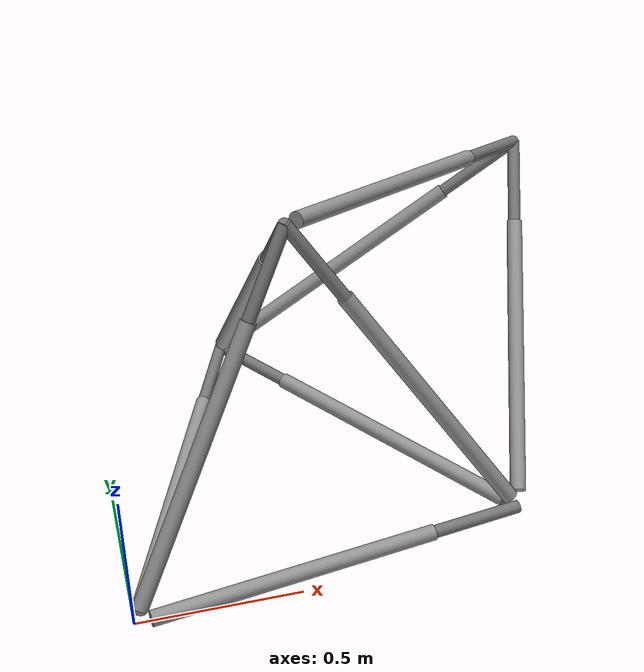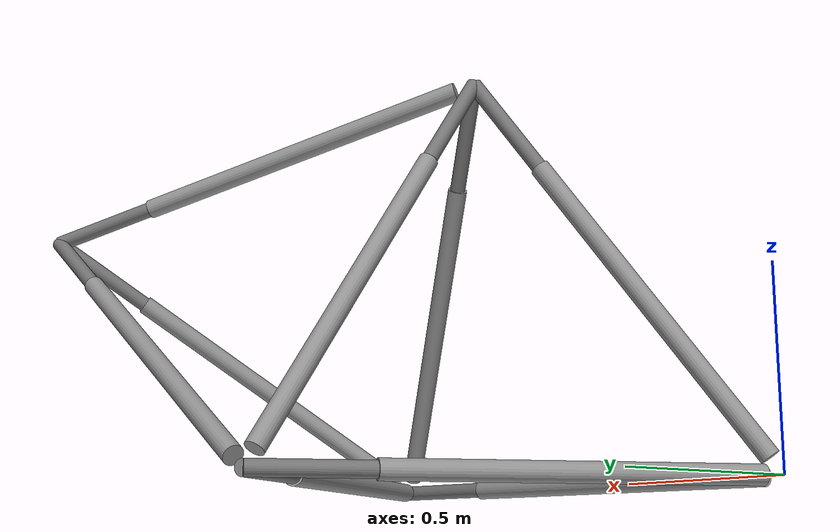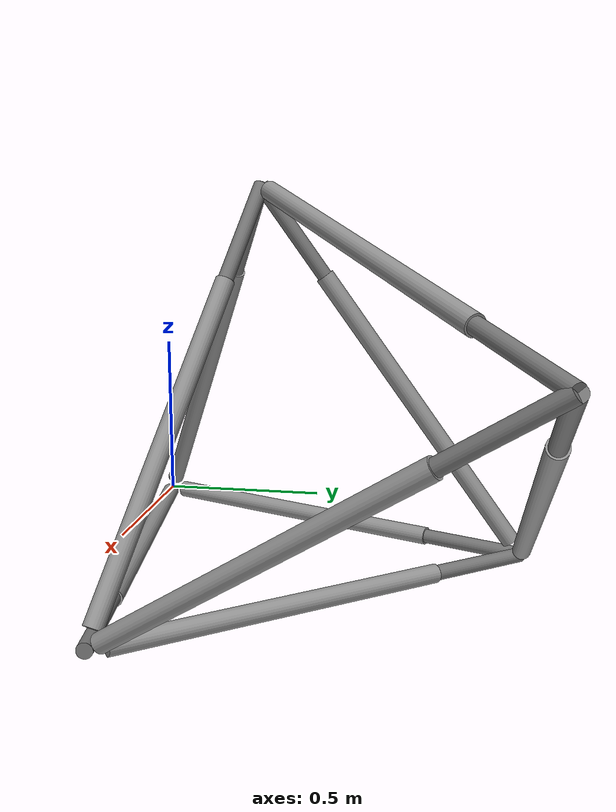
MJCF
<mujoco model="2-tet">
  <compiler angle="radian" meshdir="assets" autolimits="true"/>
  <option gravity="0 0 -9.81" timestep="0.002" integrator="implicit"/>

  <option cone="elliptic" impratio="10"/>

  <asset>
    <material name="metal" rgba="0.58 0.58 0.58 1"/>
    <material name="gray" rgba="0.4627 0.4627 0.4627 1"/>
    <material name="red" rgba="0.9 0.1 0.1 1"/>
    <texture name="grid" type="2d" builtin="checker" width="512" height="512" rgb1=".1 .2 .3" rgb2=".2 .3 .4"/>
    <material name="grid" texture="grid" texrepeat="1 1" texuniform="true" reflectance=".2"/>
  </asset>

  <worldbody>
  <body name="ground" pos="0 0 0">
  <freejoint/>

    <body name="[0-1-0]" pos="0.000000 0.000000 0.000000" >

    <geom type="cylinder" pos="0.494917 0.071110 0.000000" axisangle="-0.142221 0.989835 0.000000 1.570796" size="0.025 0.45" material="metal" contype="1"/>
    <body name="[0-1-1]" pos="0.494917 0.071110 0.000000" >
        <geom type="cylinder" pos="0.236071 0.033919 0.000000" axisangle="-0.142221 0.989835 0.000000 1.570796" size="0.02 0.5" material="gray" contype="1"/>
        <joint name="Linear-0-1" type="slide" axis="0.989835 0.142221 0.000000" range="-0.238495 0.711505"/>

    <body name="[1-2-0]" pos="0.730988 0.105029 0.000000" >
    <joint name="Passive1-2" type="ball" pos="0.000000 0.000000 0.000000" axis="0 1 0" damping=".9"/>
    <geom type="cylinder" pos="-0.309042 0.393056 0.000000" axisangle="-0.786112 -0.618084 0.000000 1.570796" size="0.025 0.45" material="metal" contype="1"/>
    <body name="[1-2-1]" pos="-0.309042 0.393056 0.000000" >
        <geom type="cylinder" pos="-0.147410 0.187484 0.000000" axisangle="-0.786112 -0.618084 0.000000 1.570796" size="0.02 0.5" material="gray" contype="1"/>
        <joint name="Linear-1-2" type="slide" axis="-0.618084 0.786112 0.000000" range="-0.238495 0.711505"/>

    <body name="[2-3-0]" pos="-0.456452 0.580540 0.000000" >
    <joint name="Passive2-3" type="ball" pos="0.000000 0.000000 0.000000" axis="0 1 0" damping=".9"/>
    <geom type="cylinder" pos="0.041056 -0.285741 0.408248" axisangle="0.571481 0.082111 -0.000000 0.615480" size="0.025 0.45" material="metal" contype="1"/>
    <body name="[2-3-1]" pos="0.041056 -0.285741 0.408248" >
        <geom type="cylinder" pos="0.019583 -0.136296 0.194730" axisangle="0.571481 0.082111 -0.000000 0.615480" size="0.02 0.5" material="gray" contype="1"/>
        <joint name="Linear-2-3" type="slide" axis="0.082111 -0.571481 0.816497" range="-0.238495 0.711505"/>

    <body name="[3-4-0]" pos="0.060639 -0.422036 0.602979" >
    <joint name="Passive3-4" type="ball" pos="0.000000 0.000000 0.000000" axis="0 1 0" damping=".9"/>
    <geom type="cylinder" pos="0.378218 0.297376 -0.136083" axisangle="-0.594752 0.756436 0.000000 1.846439" size="0.025 0.45" material="metal" contype="1"/>
    <body name="[3-4-1]" pos="0.378218 0.297376 -0.136083" >
        <geom type="cylinder" pos="0.180406 0.141845 -0.064910" axisangle="-0.594752 0.756436 0.000000 1.846439" size="0.02 0.5" material="gray" contype="1"/>
        <joint name="Linear-3-4" type="slide" axis="0.756436 0.594752 -0.272166" range="-0.238495 0.711505"/>

    </body>
    </body>

    </body>
    </body>

    <body name="[2-4-0]" pos="-0.456452 0.580540 0.000000" >
    <joint name="Passive2-4" type="ball" pos="0.000000 0.000000 0.000000" axis="0 1 0" damping=".9"/>
    <geom type="cylinder" pos="0.419274 0.011635 0.272166" axisangle="-0.023270 0.838548 0.000000 0.995205" size="0.025 0.45" material="metal" contype="1"/>
    <body name="[2-4-1]" pos="0.419274 0.011635 0.272166" >
        <geom type="cylinder" pos="0.199989 0.005550 0.129820" axisangle="-0.023270 0.838548 0.000000 0.995205" size="0.02 0.5" material="gray" contype="1"/>
        <joint name="Linear-2-4" type="slide" axis="0.838548 0.023270 0.544331" range="-0.238495 0.711505"/>

    </body>
    </body>

    </body>
    </body>

    <body name="[1-3-0]" pos="0.730988 0.105029 0.000000" >
    <joint name="Passive1-3" type="ball" pos="0.000000 0.000000 0.000000" axis="0 1 0" damping=".9"/>
    <geom type="cylinder" pos="-0.267987 0.107315 0.408248" axisangle="-0.214630 -0.535973 0.000000 0.615480" size="0.025 0.45" material="metal" contype="1"/>
    <body name="[1-3-1]" pos="-0.267987 0.107315 0.408248" >
        <geom type="cylinder" pos="-0.127827 0.051188 0.194730" axisangle="-0.214630 -0.535973 0.000000 0.615480" size="0.02 0.5" material="gray" contype="1"/>
        <joint name="Linear-1-3" type="slide" axis="-0.535973 0.214630 0.816497" range="-0.238495 0.711505"/>

    </body>
    </body>

    <body name="[1-4-0]" pos="0.730988 0.105029 0.000000" >
    <joint name="Passive1-4" type="ball" pos="0.000000 0.000000 0.000000" axis="0 1 0" damping=".9"/>
    <geom type="cylinder" pos="0.110232 0.404691 0.272166" axisangle="-0.809382 0.220463 0.000000 0.995205" size="0.025 0.45" material="metal" contype="1"/>
    <body name="[1-4-1]" pos="0.110232 0.404691 0.272166" >
        <geom type="cylinder" pos="0.052579 0.193034 0.129820" axisangle="-0.809382 0.220463 0.000000 0.995205" size="0.02 0.5" material="gray" contype="1"/>
        <joint name="Linear-1-4" type="slide" axis="0.220463 0.809382 0.544331" range="-0.238495 0.711505"/>

    </body>
    </body>

    </body>
    </body>

    <body name="[0-2-0]" pos="0.000000 0.000000 0.000000" >
    <joint name="Passive0-2" type="ball" pos="0.000000 0.000000 0.000000" axis="0 1 0" damping=".9"/>
    <geom type="cylinder" pos="0.185875 0.464166 0.000000" axisangle="-0.928333 0.371751 0.000000 1.570796" size="0.025 0.45" material="metal" contype="1"/>
    <body name="[0-2-1]" pos="0.185875 0.464166 0.000000" >
        <geom type="cylinder" pos="0.088661 0.221403 0.000000" axisangle="-0.928333 0.371751 0.000000 1.570796" size="0.02 0.5" material="gray" contype="1"/>
        <joint name="Linear-0-2" type="slide" axis="0.371751 0.928333 0.000000" range="-0.238495 0.711505"/>

    </body>
    </body>

    <body name="[0-3-0]" pos="0.000000 0.000000 0.000000" >
    <joint name="Passive0-3" type="ball" pos="0.000000 0.000000 0.000000" axis="0 1 0" damping=".9"/>
    <geom type="cylinder" pos="0.226931 0.178426 0.408248" axisangle="-0.356851 0.453862 0.000000 0.615480" size="0.025 0.45" material="metal" contype="1"/>
    <body name="[0-3-1]" pos="0.226931 0.178426 0.408248" >
        <geom type="cylinder" pos="0.108244 0.085107 0.194730" axisangle="-0.356851 0.453862 0.000000 0.615480" size="0.02 0.5" material="gray" contype="1"/>
        <joint name="Linear-0-3" type="slide" axis="0.453862 0.356851 0.816497" range="-0.238495 0.711505"/>

    </body>
    </body>
    </body> </worldbody> <equality>
<connect name="kinematic_link_0-0" active="true" body1="[0-2-1]" body2="[1-2-1]" anchor=" 0.274536 0.685569 0.000000" />
<connect name="kinematic_link_1-0" active="true" body1="[0-3-1]" body2="[1-3-1]" anchor=" 0.335175 0.263533 0.602979" />
<connect name="kinematic_link_1-1" active="true" body1="[0-3-1]" body2="[2-3-1]" anchor=" 0.335175 0.263533 0.602979" />
<connect name="kinematic_link_2-0" active="true" body1="[1-3-1]" body2="[0-3-1]" anchor=" -0.395813 0.158503 0.602979" />
<connect name="kinematic_link_2-1" active="true" body1="[1-3-1]" body2="[2-3-1]" anchor=" -0.395813 0.158503 0.602979" />
<connect name="kinematic_link_3-0" active="true" body1="[1-4-1]" body2="[2-4-1]" anchor=" 0.162811 0.597725 0.401986" />
<connect name="kinematic_link_3-1" active="true" body1="[1-4-1]" body2="[3-4-1]" anchor=" 0.162811 0.597725 0.401986" />
<connect name="kinematic_link_4-0" active="true" body1="[2-4-1]" body2="[1-4-1]" anchor=" 0.619263 0.017185 0.401986" />
<connect name="kinematic_link_4-1" active="true" body1="[2-4-1]" body2="[3-4-1]" anchor=" 0.619263 0.017185 0.401986" />
<connect name="kinematic_link_5-0" active="true" body1="[3-4-1]" body2="[1-4-1]" anchor=" 0.558625 0.439221 -0.200993" />
<connect name="kinematic_link_5-1" active="true" body1="[3-4-1]" body2="[2-4-1]" anchor=" 0.558625 0.439221 -0.200993" /></equality><actuator>

<intvelocity name="Member-1-2" joint="Linear-1-2" kp="18000"  kv="10000" inheritrange="1" />
<intvelocity name="Member-1-3" joint="Linear-1-3" kp="18000"  kv="10000" inheritrange="1" />
<intvelocity name="Member-1-4" joint="Linear-1-4" kp="18000"  kv="10000" inheritrange="1" />
<intvelocity name="Member-0-1" joint="Linear-0-1" kp="18000"  kv="10000" inheritrange="1" />
<intvelocity name="Member-0-2" joint="Linear-0-2" kp="18000"  kv="10000" inheritrange="1" />
<intvelocity name="Member-0-3" joint="Linear-0-3" kp="18000"  kv="10000" inheritrange="1" />
<intvelocity name="Member-2-3" joint="Linear-2-3" kp="18000"  kv="10000" inheritrange="1" />
<intvelocity name="Member-2-4" joint="Linear-2-4" kp="18000"  kv="10000" inheritrange="1" />
<intvelocity name="Member-3-4" joint="Linear-3-4" kp="18000"  kv="10000" inheritrange="1" /></actuator>
</mujoco>
